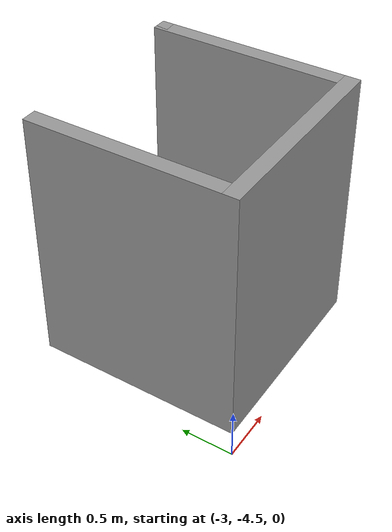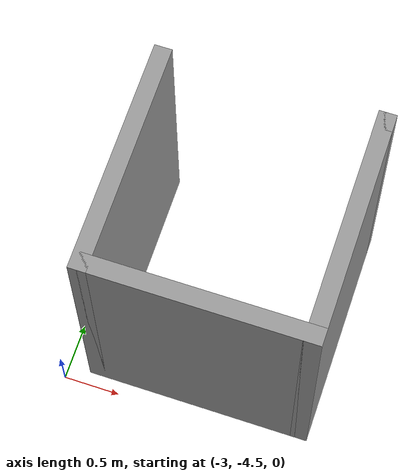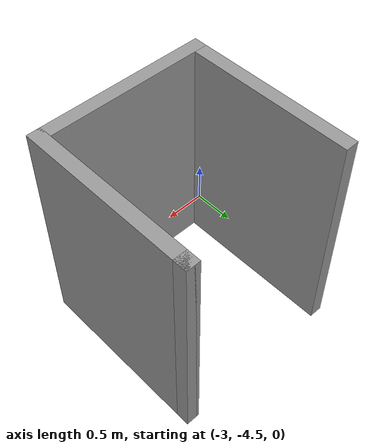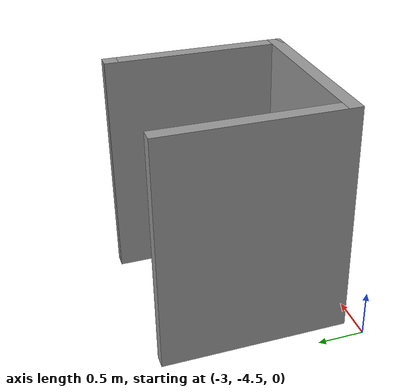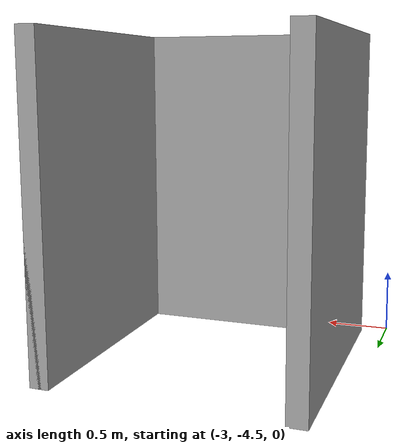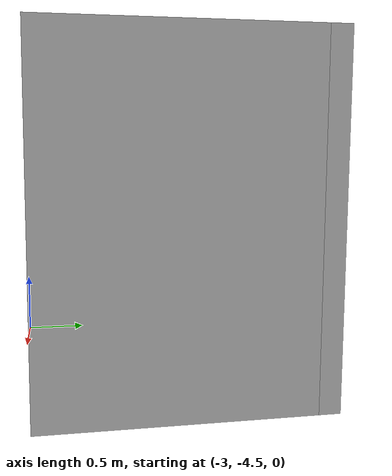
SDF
<?xml version='1.0'?>
<sdf version='1.7'>
  <model name='Open'>
    <pose>-1.4025 -2.1925 0 0 -0 0</pose>
    <link name='Wall_0'>
      <collision name='Wall_0_Collision'>
        <geometry>
          <box>
            <size>2 0.15 2.5</size>
          </box>
        </geometry>
        <pose>0 0 1.25 0 -0 0</pose>
      </collision>
      <visual name='Wall_0_Visual'>
        <pose>0 0 1.25 0 -0 0</pose>
        <geometry>
          <box>
            <size>2 0.15 2.5</size>
          </box>
        </geometry>
        <material>
          <script>
            <uri>file://media/materials/scripts/gazebo.material</uri>
            <name>Gazebo/Grey</name>
          </script>
          <ambient>1 1 1 1</ambient>
        </material>
        <meta>
          <layer>0</layer>
        </meta>
      </visual>
      <pose>-1.3275 -1.1925 0 0 -0 -1.5708</pose>
    </link>
    <link name='Wall_1'>
      <collision name='Wall_1_Collision'>
        <geometry>
          <box>
            <size>2 0.15 2.5</size>
          </box>
        </geometry>
        <pose>0 0 1.25 0 -0 0</pose>
      </collision>
      <visual name='Wall_1_Visual'>
        <pose>0 0 1.25 0 -0 0</pose>
        <geometry>
          <box>
            <size>2 0.15 2.5</size>
          </box>
        </geometry>
        <material>
          <script>
            <uri>file://media/materials/scripts/gazebo.material</uri>
            <name>Gazebo/Grey</name>
          </script>
          <ambient>1 1 1 1</ambient>
        </material>
        <meta>
          <layer>0</layer>
        </meta>
      </visual>
      <pose>-0.4025 -2.1175 0 0 -0 0</pose>
    </link>
    <link name='Wall_2'>
      <collision name='Wall_2_Collision'>
        <geometry>
          <box>
            <size>2 0.15 2.5</size>
          </box>
        </geometry>
        <pose>0 0 1.25 0 -0 0</pose>
      </collision>
      <visual name='Wall_2_Visual'>
        <pose>0 0 1.25 0 -0 0</pose>
        <geometry>
          <box>
            <size>2 0.15 2.5</size>
          </box>
        </geometry>
        <material>
          <script>
            <uri>file://media/materials/scripts/gazebo.material</uri>
            <name>Gazebo/Grey</name>
          </script>
          <ambient>1 1 1 1</ambient>
        </material>
        <meta>
          <layer>0</layer>
        </meta>
      </visual>
      <pose>0.5225 -1.1925 0 0 -0 1.5708</pose>
    </link>
    <link name='Wall_3'>
      <collision name='Wall_3_Collision'>
        <geometry>
          <box>
            <size>0.15 0.15 2.5</size>
          </box>
        </geometry>
        <pose>0 0 1.25 0 -0 0</pose>
      </collision>
      <visual name='Wall_3_Visual'>
        <pose>0 0 1.25 0 -0 0</pose>
        <geometry>
          <box>
            <size>0.15 0.15 2.5</size>
          </box>
        </geometry>
        <material>
          <script>
            <uri>file://media/materials/scripts/gazebo.material</uri>
            <name>Gazebo/Grey</name>
          </script>
          <ambient>1 1 1 1</ambient>
        </material>
        <meta>
          <layer>0</layer>
        </meta>
      </visual>
      <pose>0.5225 -0.2675 0 0 -0 0</pose>
    </link>
    <static>1</static>
  </model>
</sdf>
